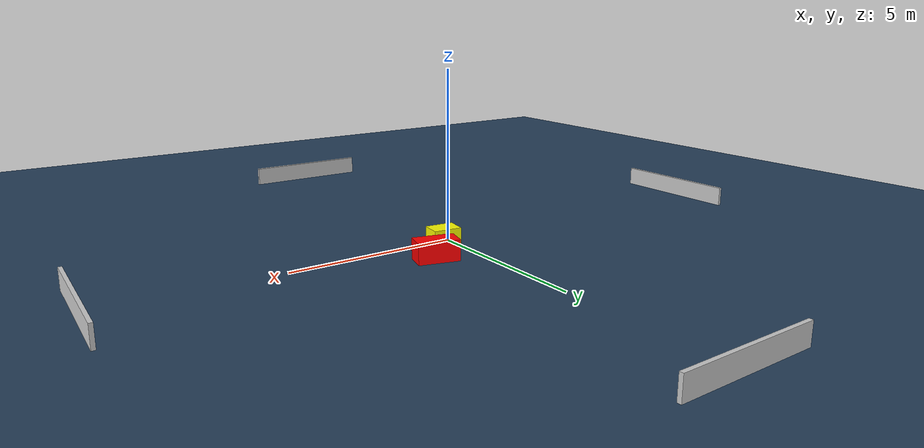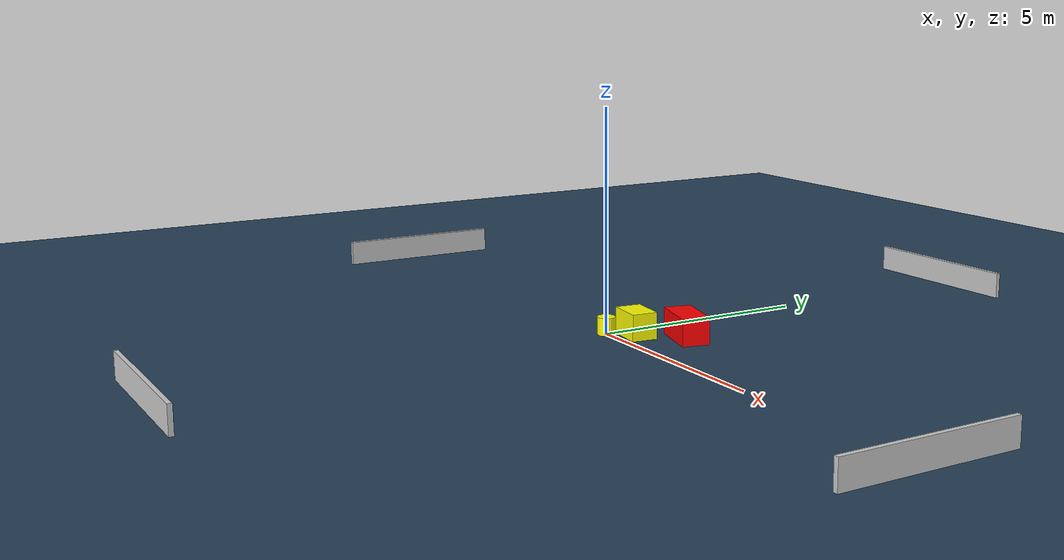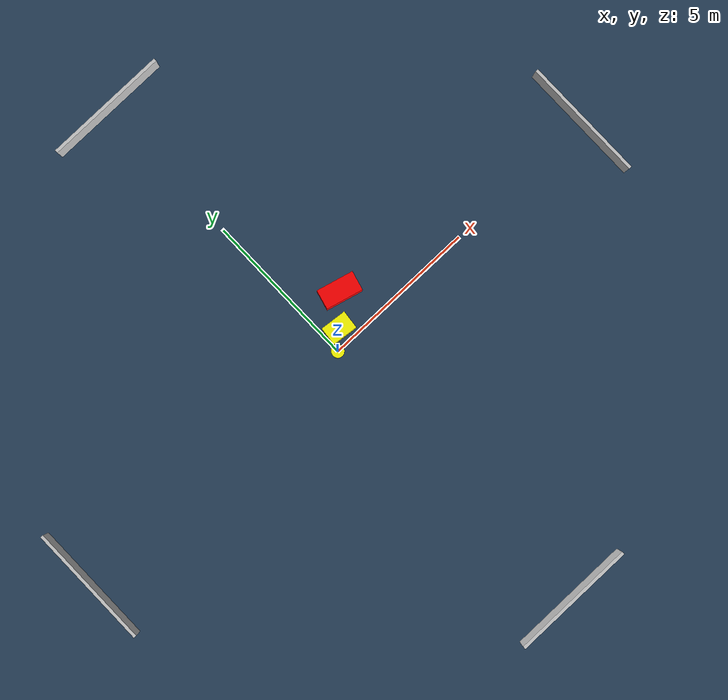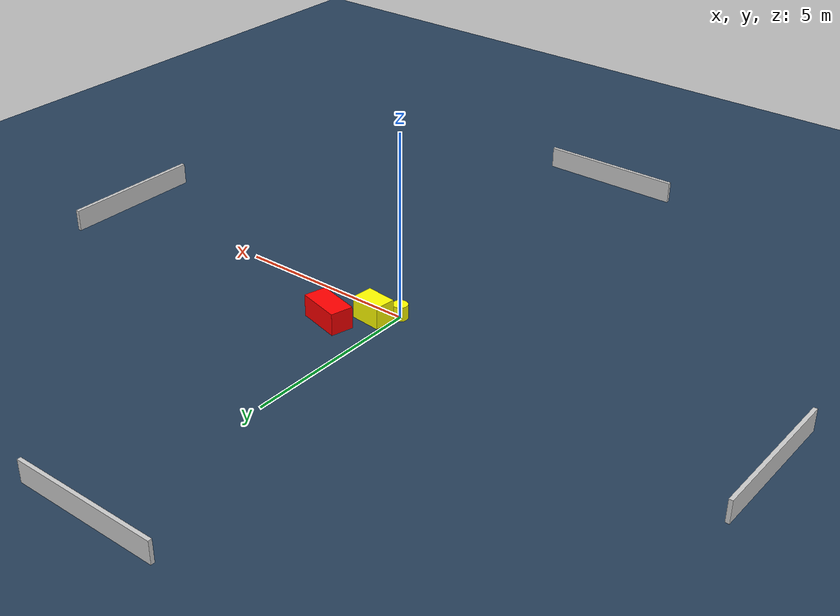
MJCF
<?xml version="1.0" ?>
<mujoco model="generated_environment">
  <option timestep="0.01" integrator="RK4" cone="elliptic"/>
  <default>
    <geom density="1"/>
  </default>
  <asset>
    <texture builtin="gradient" height="3072" name="skybox" rgb1="0.3 0.5 0.7" rgb2="0 0 0" type="skybox" width="512"/>
    <texture builtin="checker" height="300" name="groundplane" rgb1="0.2 0.3 0.4" rgb2="0.1 0.2 0.3" type="2d" width="300"/>
    <material name="groundplane" reflectance="0.2" texrepeat="5 5" texture="groundplane"/>
  </asset>
  <worldbody>
    <light dir="0 0 -1" directional="true" pos="0 0 1.5"/>
    <geom condim="3" friction="0.5 0.005 0.001" material="groundplane" name="floor" pos="0 0 0" size="0 0 0.05" type="plane"/>
    <body name="walls">
      <geom name="wall_1" condim="4" pos="-10.0 0.0 0.3" rgba="0.800000011920929 0.800000011920929 0.800000011920929 1.0" size="0.05 2.0 0.3" type="box"/>
      <geom name="wall_2" condim="4" pos="10.0 0.0 0.3" rgba="0.800000011920929 0.800000011920929 0.800000011920929 1.0" size="0.05 2.0 0.3" type="box"/>
      <geom name="wall_3" condim="4" pos="0.0 -10.0 0.3" rgba="0.800000011920929 0.800000011920929 0.800000011920929 1.0" size="2.0 0.05 0.3" type="box"/>
      <geom name="wall_4" condim="4" pos="0.0 10.0 0.3" rgba="0.800000011920929 0.800000011920929 0.800000011920929 1.0" size="2.0 0.05 0.3" type="box"/>
    </body>
    <body name="robot">
      <joint name="joint_x" type="slide" pos="0 0 0" axis="1 0 0"/>
      <joint name="joint_y" type="slide" pos="0 0 0" axis="0 1 0"/>
      <geom name="robot" type="cylinder" pos="0.0 0.0 0.2" size="0.2 0.2 0.0" mass="5.0" friction="1.0 0.005 0.0001" condim="4" rgba="1.0 1.0 0.0 1.0"/>
    </body>
    <body name="obstacle_1_movable">
      <geom name="obstacle_1_movable" condim="4" pos="0.48819175172141394 0.4674770405562404 0.3" euler="0 0 263.9810881175466" friction="0.0 0.005 0.001" rgba="1.0 1.0 0.0 1.0" size="0.29187820315453855 0.417705848457094 0.3" type="box" mass="0.1"/>
      <joint type="free"/>
    </body>
    <body name="obstacle_2_static">
      <geom name="obstacle_2_static" condim="4" pos="1.2683874761740468 1.2649175644388808 0.3" euler="0 0 165.43803705059543" friction="0.0 0.005 0.001" rgba="1.0 0.0 0.0 1.0" size="0.5975100943344974 0.31090710184694953 0.3" type="box"/>
    </body>
  </worldbody>
  <actuator>
    <motor name="actuator_x" joint="joint_x" gear="1" ctrlrange="-1 1"/>
    <motor name="actuator_y" joint="joint_y" gear="1" ctrlrange="-1 1"/>
  </actuator>
</mujoco>
